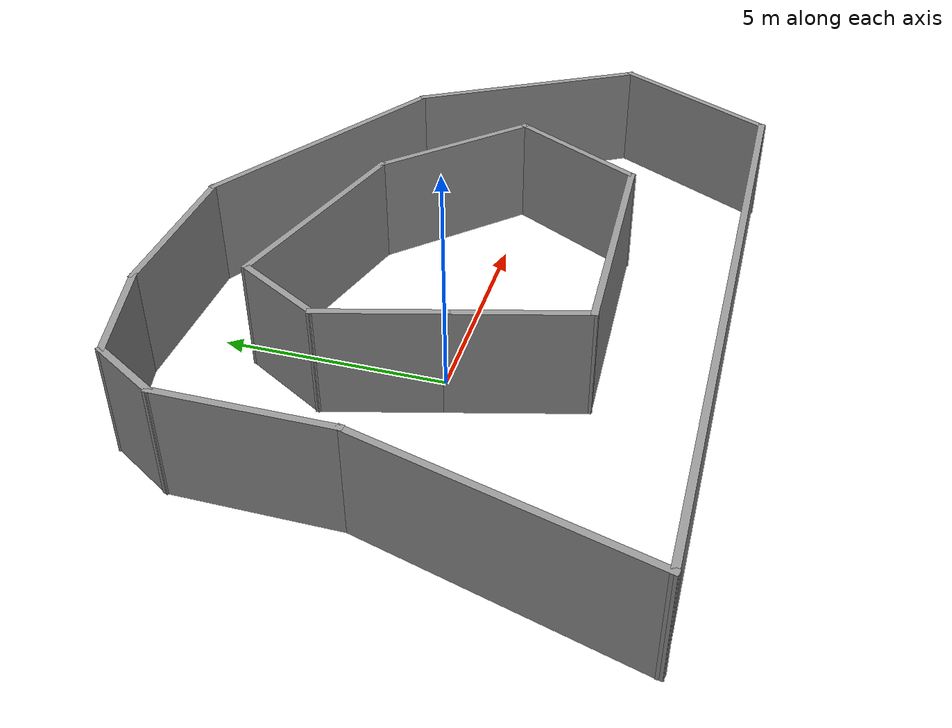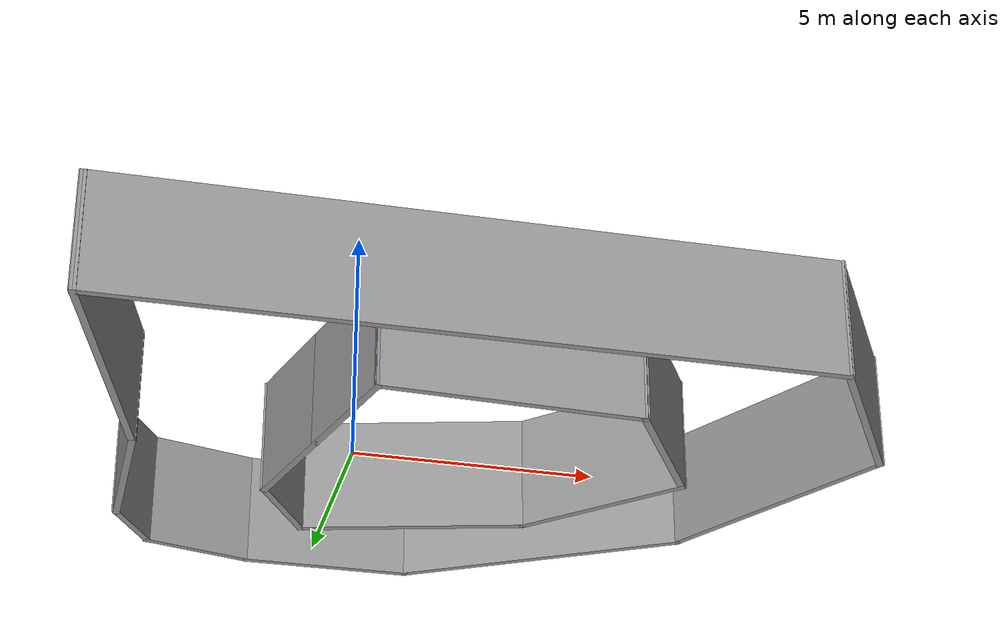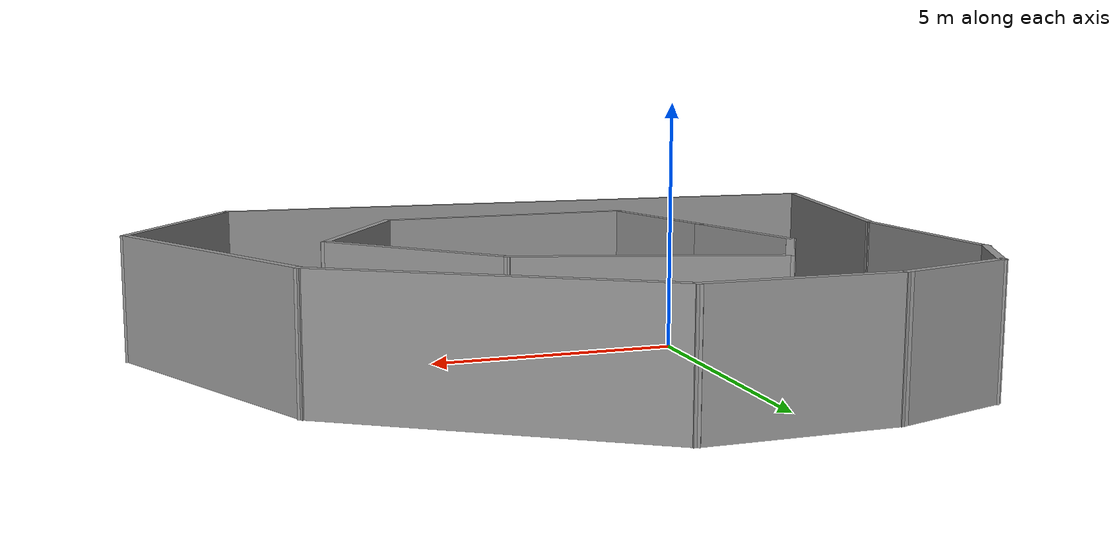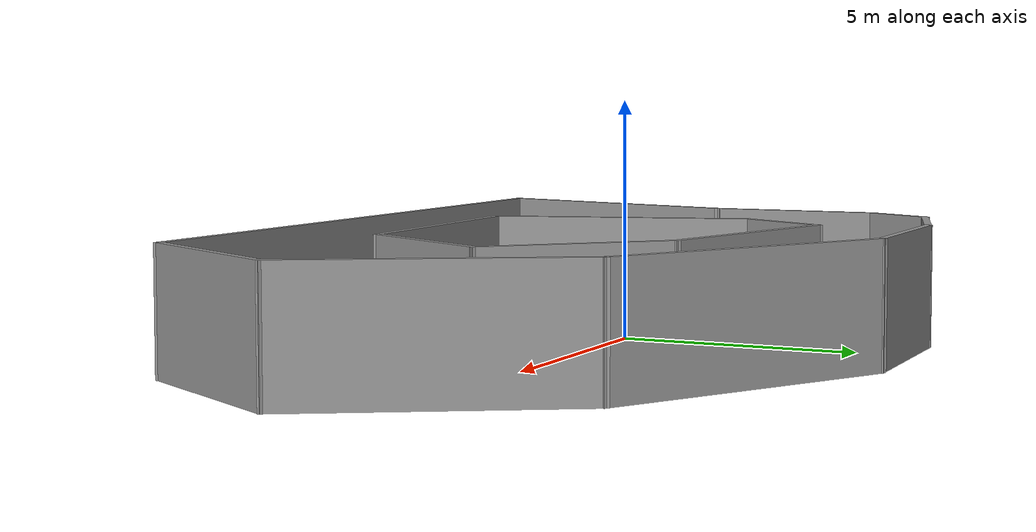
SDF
<?xml version='1.0'?>
<sdf version='1.7'>
  <model name='circle'>
    <pose>2.30727 0.303058 0 0 -0 0</pose>
    <link name='Wall_26'>
      <collision name='Wall_26_Collision'>
        <geometry>
          <box>
            <size>6.25 0.15 2.5</size>
          </box>
        </geometry>
        <pose>0 0 1.25 0 -0 0</pose>
      </collision>
      <visual name='Wall_26_Visual'>
        <pose>0 0 1.25 0 -0 0</pose>
        <geometry>
          <box>
            <size>6.25 0.15 2.5</size>
          </box>
        </geometry>
        <material>
          <script>
            <uri>file://media/materials/scripts/gazebo.material</uri>
            <name>Gazebo/Grey</name>
          </script>
          <ambient>1 1 1 1</ambient>
        </material>
        <meta>
          <layer>0</layer>
        </meta>
      </visual>
      <pose>-7.48989 -2.75222 0 0 -0 1.309</pose>
    </link>
    <link name='Wall_27'>
      <collision name='Wall_27_Collision'>
        <geometry>
          <box>
            <size>3.75 0.15 2.5</size>
          </box>
        </geometry>
        <pose>0 0 1.25 0 -0 0</pose>
      </collision>
      <visual name='Wall_27_Visual'>
        <pose>0 0 1.25 0 -0 0</pose>
        <geometry>
          <box>
            <size>3.75 0.15 2.5</size>
          </box>
        </geometry>
        <material>
          <script>
            <uri>file://media/materials/scripts/gazebo.material</uri>
            <name>Gazebo/Grey</name>
          </script>
          <ambient>1 1 1 1</ambient>
        </material>
        <meta>
          <layer>0</layer>
        </meta>
      </visual>
      <pose>-6.70049 1.99386 0 0 -0 1.5708</pose>
    </link>
    <link name='Wall_28'>
      <collision name='Wall_28_Collision'>
        <geometry>
          <box>
            <size>1.75 0.15 2.5</size>
          </box>
        </geometry>
        <pose>0 0 1.25 0 -0 0</pose>
      </collision>
      <visual name='Wall_28_Visual'>
        <pose>0 0 1.25 0 -0 0</pose>
        <geometry>
          <box>
            <size>1.75 0.15 2.5</size>
          </box>
        </geometry>
        <material>
          <script>
            <uri>file://media/materials/scripts/gazebo.material</uri>
            <name>Gazebo/Grey</name>
          </script>
          <ambient>1 1 1 1</ambient>
        </material>
        <meta>
          <layer>0</layer>
        </meta>
      </visual>
      <pose>-6.30049 4.48668 0 0 -0 1.0472</pose>
    </link>
    <link name='Wall_29'>
      <collision name='Wall_29_Collision'>
        <geometry>
          <box>
            <size>2.5 0.15 2.5</size>
          </box>
        </geometry>
        <pose>0 0 1.25 0 -0 0</pose>
      </collision>
      <visual name='Wall_29_Visual'>
        <pose>0 0 1.25 0 -0 0</pose>
        <geometry>
          <box>
            <size>2.5 0.15 2.5</size>
          </box>
        </geometry>
        <material>
          <script>
            <uri>file://media/materials/scripts/gazebo.material</uri>
            <name>Gazebo/Grey</name>
          </script>
          <ambient>1 1 1 1</ambient>
        </material>
        <meta>
          <layer>0</layer>
        </meta>
      </visual>
      <pose>-4.76553 5.48361 0 0 -0 0.261799</pose>
    </link>
    <link name='Wall_30'>
      <collision name='Wall_30_Collision'>
        <geometry>
          <box>
            <size>3.75 0.15 2.5</size>
          </box>
        </geometry>
        <pose>0 0 1.25 0 -0 0</pose>
      </collision>
      <visual name='Wall_30_Visual'>
        <pose>0 0 1.25 0 -0 0</pose>
        <geometry>
          <box>
            <size>3.75 0.15 2.5</size>
          </box>
        </geometry>
        <material>
          <script>
            <uri>file://media/materials/scripts/gazebo.material</uri>
            <name>Gazebo/Grey</name>
          </script>
          <ambient>1 1 1 1</ambient>
        </material>
        <meta>
          <layer>0</layer>
        </meta>
      </visual>
      <pose>-1.83057 5.78772 0 0 -0 0</pose>
    </link>
    <link name='Wall_31'>
      <collision name='Wall_31_Collision'>
        <geometry>
          <box>
            <size>6.5 0.15 2.5</size>
          </box>
        </geometry>
        <pose>0 0 1.25 0 -0 0</pose>
      </collision>
      <visual name='Wall_31_Visual'>
        <pose>0 0 1.25 0 -0 0</pose>
        <geometry>
          <box>
            <size>6.5 0.15 2.5</size>
          </box>
        </geometry>
        <material>
          <script>
            <uri>file://media/materials/scripts/gazebo.material</uri>
            <name>Gazebo/Grey</name>
          </script>
          <ambient>1 1 1 1</ambient>
        </material>
        <meta>
          <layer>0</layer>
        </meta>
      </visual>
      <pose>2.71906 4.20022 0 0 -0 -0.523599</pose>
    </link>
    <link name='Wall_32'>
      <collision name='Wall_32_Collision'>
        <geometry>
          <box>
            <size>5.75 0.15 2.5</size>
          </box>
        </geometry>
        <pose>0 0 1.25 0 -0 0</pose>
      </collision>
      <visual name='Wall_32_Visual'>
        <pose>0 0 1.25 0 -0 0</pose>
        <geometry>
          <box>
            <size>5.75 0.15 2.5</size>
          </box>
        </geometry>
        <material>
          <script>
            <uri>file://media/materials/scripts/gazebo.material</uri>
            <name>Gazebo/Grey</name>
          </script>
          <ambient>1 1 1 1</ambient>
        </material>
        <meta>
          <layer>0</layer>
        </meta>
      </visual>
      <pose>6.86869 0.187852 0 0 -0 -1.0472</pose>
    </link>
    <link name='Wall_33'>
      <collision name='Wall_33_Collision'>
        <geometry>
          <box>
            <size>4.25 0.15 2.5</size>
          </box>
        </geometry>
        <pose>0 0 1.25 0 -0 0</pose>
      </collision>
      <visual name='Wall_33_Visual'>
        <pose>0 0 1.25 0 -0 0</pose>
        <geometry>
          <box>
            <size>4.25 0.15 2.5</size>
          </box>
        </geometry>
        <material>
          <script>
            <uri>file://media/materials/scripts/gazebo.material</uri>
            <name>Gazebo/Grey</name>
          </script>
          <ambient>1 1 1 1</ambient>
        </material>
        <meta>
          <layer>0</layer>
        </meta>
      </visual>
      <pose>7.24369 -4.01237 0 0 -0 -2.0944</pose>
    </link>
    <link name='Wall_34'>
      <collision name='Wall_34_Collision'>
        <geometry>
          <box>
            <size>14.6483 0.15 2.5</size>
          </box>
        </geometry>
        <pose>0 0 1.25 0 -0 0</pose>
      </collision>
      <visual name='Wall_34_Visual'>
        <pose>0 0 1.25 0 -0 0</pose>
        <geometry>
          <box>
            <size>14.6483 0.15 2.5</size>
          </box>
        </geometry>
        <material>
          <script>
            <uri>file://media/materials/scripts/gazebo.material</uri>
            <name>Gazebo/Grey</name>
          </script>
          <ambient>1 1 1 1</ambient>
        </material>
        <meta>
          <layer>0</layer>
        </meta>
      </visual>
      <pose>-1.0303 -5.74301 0 0 -0 3.13542</pose>
    </link>
    <link name='Wall_36'>
      <collision name='Wall_36_Collision'>
        <geometry>
          <box>
            <size>3 0.15 2.5</size>
          </box>
        </geometry>
        <pose>0 0 1.25 0 -0 0</pose>
      </collision>
      <visual name='Wall_36_Visual'>
        <pose>0 0 1.25 0 -0 0</pose>
        <geometry>
          <box>
            <size>3 0.15 2.5</size>
          </box>
        </geometry>
        <material>
          <script>
            <uri>file://media/materials/scripts/gazebo.material</uri>
            <name>Gazebo/Grey</name>
          </script>
          <ambient>1 1 1 1</ambient>
        </material>
        <meta>
          <layer>0</layer>
        </meta>
      </visual>
      <pose>-2.73807 -1.96487 0 0 -0 1.8326</pose>
    </link>
    <link name='Wall_37'>
      <collision name='Wall_37_Collision'>
        <geometry>
          <box>
            <size>2.75 0.15 2.5</size>
          </box>
        </geometry>
        <pose>0 0 1.25 0 -0 0</pose>
      </collision>
      <visual name='Wall_37_Visual'>
        <pose>0 0 1.25 0 -0 0</pose>
        <geometry>
          <box>
            <size>2.75 0.15 2.5</size>
          </box>
        </geometry>
        <material>
          <script>
            <uri>file://media/materials/scripts/gazebo.material</uri>
            <name>Gazebo/Grey</name>
          </script>
          <ambient>1 1 1 1</ambient>
        </material>
        <meta>
          <layer>0</layer>
        </meta>
      </visual>
      <pose>-3.44336 0.667279 0 0 -0 1.8326</pose>
    </link>
    <link name='Wall_38'>
      <collision name='Wall_38_Collision'>
        <geometry>
          <box>
            <size>2.25 0.15 2.5</size>
          </box>
        </geometry>
        <pose>0 0 1.25 0 -0 0</pose>
      </collision>
      <visual name='Wall_38_Visual'>
        <pose>0 0 1.25 0 -0 0</pose>
        <geometry>
          <box>
            <size>2.25 0.15 2.5</size>
          </box>
        </geometry>
        <material>
          <script>
            <uri>file://media/materials/scripts/gazebo.material</uri>
            <name>Gazebo/Grey</name>
          </script>
          <ambient>1 1 1 1</ambient>
        </material>
        <meta>
          <layer>0</layer>
        </meta>
      </visual>
      <pose>-3.25482 2.83231 0 0 -0 1.0472</pose>
    </link>
    <link name='Wall_39'>
      <collision name='Wall_39_Collision'>
        <geometry>
          <box>
            <size>5 0.15 2.5</size>
          </box>
        </geometry>
        <pose>0 0 1.25 0 -0 0</pose>
      </collision>
      <visual name='Wall_39_Visual'>
        <pose>0 0 1.25 0 -0 0</pose>
        <geometry>
          <box>
            <size>5 0.15 2.5</size>
          </box>
        </geometry>
        <material>
          <script>
            <uri>file://media/materials/scripts/gazebo.material</uri>
            <name>Gazebo/Grey</name>
          </script>
          <ambient>1 1 1 1</ambient>
        </material>
        <meta>
          <layer>0</layer>
        </meta>
      </visual>
      <pose>-0.387451 3.114 0 0 -0 -0.261799</pose>
    </link>
    <link name='Wall_40'>
      <collision name='Wall_40_Collision'>
        <geometry>
          <box>
            <size>4 0.15 2.5</size>
          </box>
        </geometry>
        <pose>0 0 1.25 0 -0 0</pose>
      </collision>
      <visual name='Wall_40_Visual'>
        <pose>0 0 1.25 0 -0 0</pose>
        <geometry>
          <box>
            <size>4 0.15 2.5</size>
          </box>
        </geometry>
        <material>
          <script>
            <uri>file://media/materials/scripts/gazebo.material</uri>
            <name>Gazebo/Grey</name>
          </script>
          <ambient>1 1 1 1</ambient>
        </material>
        <meta>
          <layer>0</layer>
        </meta>
      </visual>
      <pose>3.3161 1.12518 0 0 -0 -0.785398</pose>
    </link>
    <link name='Wall_41'>
      <collision name='Wall_41_Collision'>
        <geometry>
          <box>
            <size>3.5 0.15 2.5</size>
          </box>
        </geometry>
        <pose>0 0 1.25 0 -0 0</pose>
      </collision>
      <visual name='Wall_41_Visual'>
        <pose>0 0 1.25 0 -0 0</pose>
        <geometry>
          <box>
            <size>3.5 0.15 2.5</size>
          </box>
        </geometry>
        <material>
          <script>
            <uri>file://media/materials/scripts/gazebo.material</uri>
            <name>Gazebo/Grey</name>
          </script>
          <ambient>1 1 1 1</ambient>
        </material>
        <meta>
          <layer>0</layer>
        </meta>
      </visual>
      <pose>3.83978 -1.68659 0 0 -0 -2.0944</pose>
    </link>
    <link name='Wall_42'>
      <collision name='Wall_42_Collision'>
        <geometry>
          <box>
            <size>5.52541 0.15 2.5</size>
          </box>
        </geometry>
        <pose>0 0 1.25 0 -0 0</pose>
      </collision>
      <visual name='Wall_42_Visual'>
        <pose>0 0 1.25 0 -0 0</pose>
        <geometry>
          <box>
            <size>5.52541 0.15 2.5</size>
          </box>
        </geometry>
        <material>
          <script>
            <uri>file://media/materials/scripts/gazebo.material</uri>
            <name>Gazebo/Grey</name>
          </script>
          <ambient>1 1 1 1</ambient>
        </material>
        <meta>
          <layer>0</layer>
        </meta>
      </visual>
      <pose>0.316511 -3.23925 0 0 -0 -3.10361</pose>
    </link>
    <static>1</static>
  </model>
</sdf>
